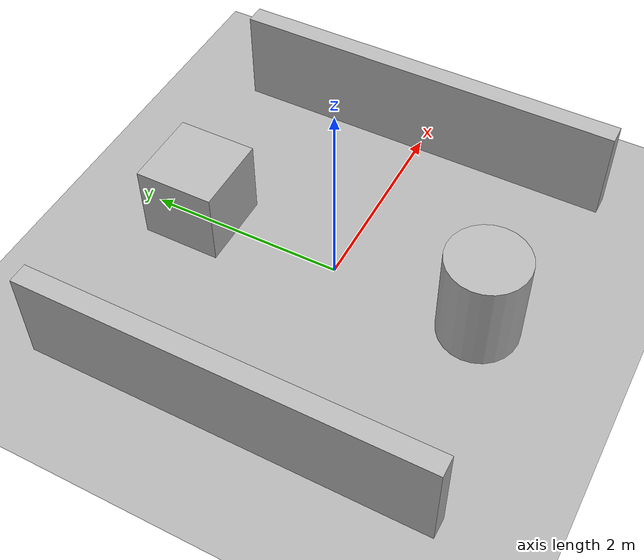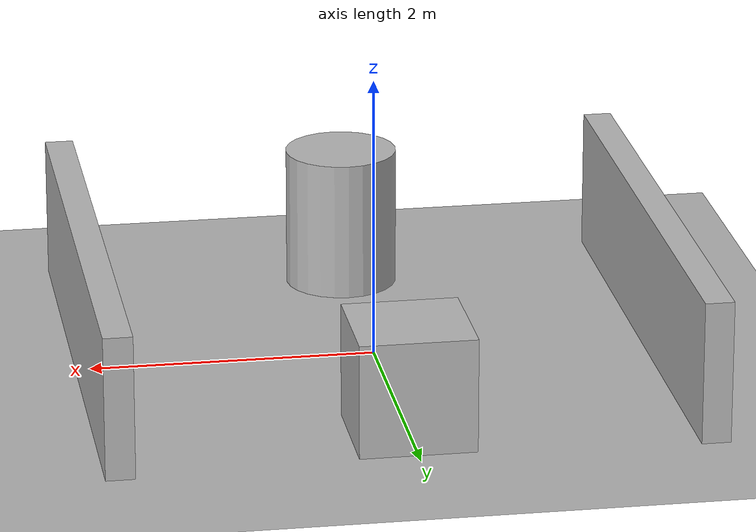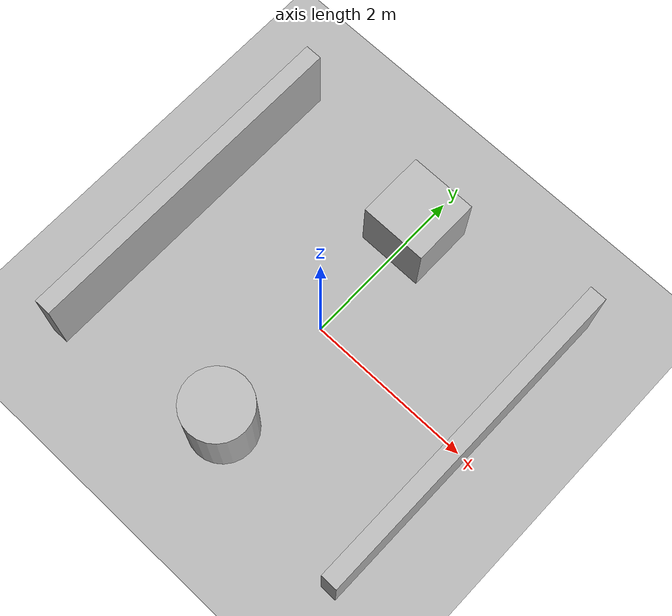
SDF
<?xml version="1.0" ?>
<sdf version="1.9">
  <world name="arena_world">

    <physics name="1ms" type="ignored">
      <max_step_size>0.001</max_step_size>
      <real_time_factor>1.0</real_time_factor>
    </physics>

    <plugin
      filename="gz-sim-physics-system"
      name="gz::sim::systems::Physics"/>
    <plugin
      filename="gz-sim-user-commands-system"
      name="gz::sim::systems::UserCommands"/>
    <plugin
      filename="gz-sim-scene-broadcaster-system"
      name="gz::sim::systems::SceneBroadcaster"/>

    <light type="directional" name="sun">
      <cast_shadows>true</cast_shadows>
      <pose>0 0 10 0 0 0</pose>
      <diffuse>0.8 0.8 0.8 1</diffuse>
      <specular>0.2 0.2 0.2 1</specular>
      <direction>-0.5 0.1 -0.9</direction>
    </light>

    <model name="ground_plane">
      <static>true</static>
      <link name="link">
        <collision name="collision">
          <geometry>
            <plane>
              <normal>0 0 1</normal>
              <size>20 20</size>
            </plane>
          </geometry>
        </collision>
        <visual name="visual">
          <geometry>
            <plane>
              <normal>0 0 1</normal>
              <size>20 20</size>
            </plane>
          </geometry>
          <material>
            <ambient>0.7 0.7 0.7 1</ambient>
            <diffuse>0.7 0.7 0.7 1</diffuse>
          </material>
        </visual>
      </link>
    </model>

    <!-- Wall 1 -->
    <model name="wall_1">
      <static>true</static>
      <pose>2 0 0.5 0 0 0</pose>
      <link name="link">
        <collision name="collision">
          <geometry>
            <box>
              <size>0.2 4 1</size>
            </box>
          </geometry>
        </collision>
        <visual name="visual">
          <geometry>
            <box>
              <size>0.2 4 1</size>
            </box>
          </geometry>
        </visual>
      </link>
    </model>

    <!-- Wall 2 -->
    <model name="wall_2">
      <static>true</static>
      <pose>-2 0 0.5 0 0 0</pose>
      <link name="link">
        <collision name="collision">
          <geometry>
            <box>
              <size>0.2 4 1</size>
            </box>
          </geometry>
        </collision>
        <visual name="visual">
          <geometry>
            <box>
              <size>0.2 4 1</size>
            </box>
          </geometry>
        </visual>
      </link>
    </model>

    <!-- Box obstacle -->
    <model name="box_obstacle_1">
      <static>true</static>
      <pose>0 1.5 0.4 0 0 0</pose>
      <link name="link">
        <collision name="collision">
          <geometry>
            <box>
              <size>0.8 0.8 0.8</size>
            </box>
          </geometry>
        </collision>
        <visual name="visual">
          <geometry>
            <box>
              <size>0.8 0.8 0.8</size>
            </box>
          </geometry>
        </visual>
      </link>
    </model>

    <!-- Cylinder obstacle -->
    <model name="cylinder_obstacle_1">
      <static>true</static>
      <pose>0 -1.5 0.5 0 0 0</pose>
      <link name="link">
        <collision name="collision">
          <geometry>
            <cylinder>
              <radius>0.4</radius>
              <length>1.0</length>
            </cylinder>
          </geometry>
        </collision>
        <visual name="visual">
          <geometry>
            <cylinder>
              <radius>0.4</radius>
              <length>1.0</length>
            </cylinder>
          </geometry>
        </visual>
      </link>
    </model>

  </world>
</sdf>
